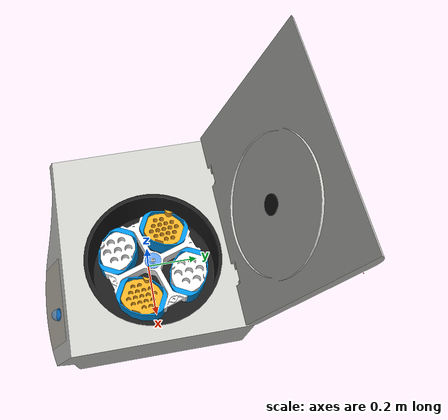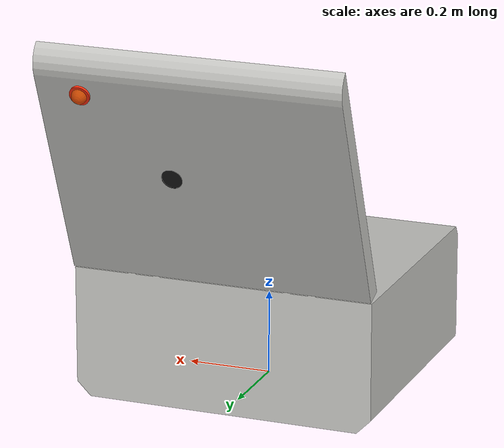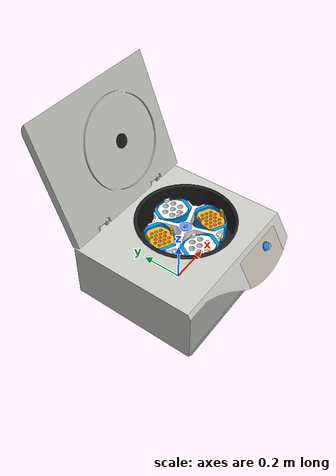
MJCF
<?xml version='1.0' encoding='utf-8'?>
<mujoco model="centrifuge_eppendorf_5910_ri">
  <compiler angle="radian" autolimits="true" assetdir="../../assets" />
  <default>
    <default class="visual">
      <geom type="mesh" contype="0" conaffinity="0" density="0" group="2" />
      <mesh inertia="shell" />
    </default>
    <default class="inertia">
      <geom type="mesh" contype="0" conaffinity="0" group="5" />
      <mesh inertia="exact" />
    </default>
    <default class="collision">
      <geom type="mesh" contype="0" conaffinity="1" density="0" group="3" />
    </default>
    <default class="button">
      <geom type="cylinder" size="0.01 0.005" rgba="0.2 0.7 0.2 1"
            contype="1" conaffinity="1" group="3" friction="1.0 0.005 0.0001" />
    </default>
  </default>
  <option gravity="0 0 0" />
  <asset>
    <mesh class="visual" name="body-visual-0" file="instrument/centrifuge_eppendorf_5910_ri/body-visual-0.obj" />
    <material name="body-0" rgba="0.78431373 0.78431373 0.76862745 1" metallic="0.0" roughness="1.0" />
    <mesh class="visual" name="body-visual-1" file="instrument/centrifuge_eppendorf_5910_ri/body-visual-1.obj" />
    <material name="body-1" rgba="0.101961 0.101961 0.101961 1" metallic="0.0" roughness="1.0" />
    <mesh class="visual" name="body-visual-2" file="instrument/centrifuge_eppendorf_5910_ri/body-visual-2.obj" />
    <texture name="body-0" type="2d" file="instrument/centrifuge_eppendorf_5910_ri/body-0.png" />
    <material name="body-2" rgba="1 1 1 1" metallic="0.0" roughness="1.0" texture="body-0" />
    <mesh class="inertia" name="body-inertia" file="instrument/centrifuge_eppendorf_5910_ri/body-inertia.obj" />
    <mesh class="collision" name="body-collision-0" file="instrument/centrifuge_eppendorf_5910_ri/body-collision-0.obj" />
    <mesh class="visual" name="lid-visual-0" file="instrument/centrifuge_eppendorf_5910_ri/lid-visual-0.obj" />
    <material name="lid-0" rgba="0.101961 0.101961 0.101961 1" metallic="0.0" roughness="1.0" />
    <mesh class="visual" name="lid-visual-1" file="instrument/centrifuge_eppendorf_5910_ri/lid-visual-1.obj" />
    <material name="lid-1" rgba="0.78431373 0.78431373 0.76862745 1" metallic="0.0" roughness="1.0" />
    <mesh class="inertia" name="lid-inertia" file="instrument/centrifuge_eppendorf_5910_ri/lid-inertia.obj" />
    <mesh class="visual" name="rotor-body-visual-0" file="instrument/centrifuge_eppendorf_5910_ri/rotor-body-visual-0.obj" />
    <material name="rotor-body-0" rgba="1 1 1 1" metallic="0.0" roughness="1.0" />
    <mesh class="visual" name="rotor-body-visual-1" file="instrument/centrifuge_eppendorf_5910_ri/rotor-body-visual-1.obj" />
    <material name="rotor-body-1" rgba="0.380392 0.615686 0.980392 1" metallic="0.0" roughness="1.0" />
    <mesh class="inertia" name="rotor-body-inertia" file="instrument/centrifuge_eppendorf_5910_ri/rotor-body-inertia.obj" />
    <mesh class="visual" name="rotor-bucket-visual-0" file="instrument/centrifuge_eppendorf_5910_ri/rotor-bucket-visual-0.obj" />
    <material name="rotor-bucket-0" rgba="0 0.568627 0.894118 1" metallic="0.0" roughness="1.0" />
    <mesh class="inertia" name="rotor-bucket-inertia" file="instrument/centrifuge_eppendorf_5910_ri/rotor-bucket-inertia.obj" />
    <mesh class="visual" name="adapter-7x50-visual-0" file="instrument/centrifuge_eppendorf_5910_ri/adapter-7x50-visual-0.obj" />
    <material name="adapter-7x50-0" rgba="1 1 1 1" metallic="0.0" roughness="1.0" />
    <mesh class="inertia" name="adapter-7x50-inertia" file="instrument/centrifuge_eppendorf_5910_ri/adapter-7x50-inertia.obj" />
    <mesh class="visual" name="adapter-17x15-visual-0" file="instrument/centrifuge_eppendorf_5910_ri/adapter-17x15-visual-0.obj" />
    <material name="adapter-17x15-0" rgba="1 0.670588 0.137255 1" metallic="0.0" roughness="1.0" />
    <mesh class="inertia" name="adapter-17x15-inertia" file="instrument/centrifuge_eppendorf_5910_ri/adapter-17x15-inertia.obj" />
  </asset>
  <extension />
  <worldbody>
    <body name="body" pos="0 0 0.05654646" quat="1 0 0 0">
      <geom class="visual" mesh="body-visual-0" material="body-0" />
      <geom class="visual" mesh="body-visual-1" material="body-1" />
      <geom class="visual" mesh="body-visual-2" material="body-2" />
      <geom class="inertia" mesh="body-inertia" density="1000" />
      <geom class="collision" name="body-inertia.002" mesh="body-collision-0" />
      <geom class="collision" type="box" size="0.36135778 0.29667471 0.07082613" pos="0 0 0.01546793" />
      <geom class="collision" type="box" size="0.36289674 0.03628967 0.08310333" pos="0 0.26516002 0.17030346" />
      <geom class="collision" type="box" size="0.30627608 0.03644686 0.08514473" pos="0.32315937 -0.00782504 0.16854638" quat="0.70756862 0.00117126 -0.00124823 -0.70664257" />
      <geom class="collision" type="box" size="0.30627608 0.1038276 0.08514473" pos="-0.25767905 -0.00782504 0.16854638" quat="0.70756862 0.00117126 -0.00124823 -0.70664257" />
      <geom class="collision" type="box" size="0.36289674 0.05262003 0.08310333" pos="0 -0.25960118 0.17030346" />
      <geom class="collision" type="box" size="0.0960729 0.0230575 0.08492844" pos="0.24200605 -0.16945544 0.16854638" quat="-0.3531246 -0.00095042 -0.00093073 0.93557535" />
      <geom class="collision" type="box" size="0.0960729 0.0230575 0.08492844" pos="-0.10209555 0.1908775 0.16854638" quat="-0.3531246 -0.00095042 -0.00093073 0.93557535" />
      <geom class="collision" type="box" size="0.09607289 0.0230575 0.08492844" pos="-0.10704812 -0.16564459 0.1692524" quat="0.91103685 0.0000146 0.00133017 -0.41232279" />
      <geom class="collision" type="box" size="0.09607289 0.0230575 0.08492844" pos="0.25120223 0.18449309 0.1692524" quat="0.91103685 0.0000146 0.00133017 -0.41232279" />

      <body name="lid" pos="-0 0.38006762 0.56668099" quat="-0.56526372 0.82491026 0 0">
        <site name="lid" pos="0.36919737 -0.20 0.02106472" quat="-1 1 1 -1" size="0.001" rgba="1 0 0 1"/>
        <joint name="lid" type="hinge" pos="-0.2266712 0.30333889 0.02083411" axis="1 -0 -0" range="0 1.94" stiffness="27.5" springref="0" damping="20"/>
        <geom class="visual" mesh="lid-visual-0" material="lid-0" />
        <geom class="visual" mesh="lid-visual-1" material="lid-1" />
        <geom class="inertia" mesh="lid-inertia" density="1000" />
        <geom class="collision" type="box" size="0.29593109 0.02106472 0.36919737" pos="0.00669231 0.01305942 0.02087301" quat="0.49807294 0.50168699 0.49849278 0.50173545" />
        <!-- Lid release button: attached to the moving lid, not the fixed base. -->
        <body name="lid_open_button" pos="0.25 -0.19166943 0.04951919">
          <joint name="lid_open_button_joint" type="slide" axis="0 0 1" range="-0.004 0" limited="true" damping="5" stiffness="1000" />
          <geom class="button" name="lid_open_button_geom" pos="0 0 0" size="0.018 0.004" rgba="1 0.18 0.05 1" />
          <geom name="lid_open_button_visual" type="cylinder" pos="0 0 0.005" size="0.024 0.003"
                rgba="1 0.18 0.05 1" contype="0" conaffinity="0" group="2" />
          <site name="lid_open_button" pos="0 0 0.008" size="0.018" type="sphere" rgba="1 0.55 0.05 0.45" />
        </body>
      </body>
      <!-- The screen is the inclined textured panel (normal 0 -0.868631 0.495459). -->
      <body name="screen_start_button" pos="0.2 -0.33897815 0.19316678" quat="0.86471358 0.50226530 0 0">
        <!-- Local +Z is the screen outward normal; pressing moves into the panel. -->
        <joint name="screen_start_button_joint" type="slide" axis="0 0 -1" range="0 0.005" damping="5" stiffness="1200" />
        <geom class="button" name="screen_start_button_geom" size="0.018 0.002" />
        <geom name="screen_start_button_visual" type="cylinder" pos="0 0 -0.003" size="0.022 0.001"
              rgba="0.12 0.55 0.95 1" contype="0" conaffinity="0" group="2" />
        <site name="screen_start_button_touch" pos="0 0 0.003" size="0.019" type="sphere" rgba="0.12 0.55 0.95 0.35" />
      </body>

      <body name="rotor-body" pos="0.07134309 0.0116669 0.20058534" quat="0.80993986 0 0 -0.58651293">
        <geom class="visual" mesh="rotor-body-visual-0" material="rotor-body-0" />
        <geom class="visual" mesh="rotor-body-visual-1" material="rotor-body-1" />
        <geom class="inertia" mesh="rotor-body-inertia" density="1000" />
        <geom class="collision" type="box" size="0.16315603 0.0081578 0.02871547" pos="0.00038151 0.00010916 -0.01821184" />
        <geom class="collision" type="box" size="0.16315606 0.0081578 0.02871547" pos="0.00038151 0.00010916 -0.01821184" quat="-0.70637015 0 0 0.70784265" />
        <geom class="collision" type="cylinder" size="0.0345578 0.03003073" pos="-0.0000825 -0.00021007 -0.01738334" />
        <body name="rotor-bucket-0" pos="-0.09273635 0.09278435 -0.07515634" quat="-0.38268179 -0.00111962 0.002703 0.92387558">
          <geom class="visual" mesh="rotor-bucket-visual-0" material="rotor-bucket-0" />
          <geom class="inertia" mesh="rotor-bucket-inertia" density="1000" />
          <body name="adapter-7x50-0" pos="0.00000012 0.00000003 -0.00166672" quat="0 0 -0 1">
            <geom class="visual" mesh="adapter-7x50-visual-0" material="adapter-7x50-0" />
            <geom class="inertia" mesh="adapter-7x50-inertia" density="1000" />
            <geom type="cylinder" size="0.014 0.015" pos="0 0 0.01"
              density="1000"  friction="3.0" solref="0.002 1" solimp="0.9 0.95 0.001"
              contype="1" conaffinity="1" group="3" rgba="0.8 0.8 0.8 0.5" />
          </body>
        </body>
        <body name="rotor-bucket-1" pos="-0.09278436 -0.09273635 -0.07515634" quat="0.92387558 0.002703 -0.00111962 -0.38268179">
          <geom class="visual" mesh="rotor-bucket-visual-0" material="rotor-bucket-0" />
          <geom class="inertia" mesh="rotor-bucket-inertia" density="1000" />
          <body name="adapter-17x15-1" pos="0.0000679 0.00000008 -0.01166692" quat="1 0 -0 0">
            <geom class="visual" mesh="adapter-17x15-visual-0" material="adapter-17x15-0" />
            <geom class="inertia" mesh="adapter-17x15-inertia" density="1000" />
          </body>
        </body>
        <body name="rotor-bucket-2" pos="0.09273635 -0.09278435 -0.07515634" quat="0.92387558 0.002703 0.00111962 0.38268179">
          <geom class="visual" mesh="rotor-bucket-visual-0" material="rotor-bucket-0" />
          <geom class="inertia" mesh="rotor-bucket-inertia" density="1000" />
          <body name="adapter-7x50-1" pos="0.00006777 0.00000002 -0.00166672" quat="1 0 -0 -0">
            <geom class="visual" mesh="adapter-7x50-visual-0" material="adapter-7x50-0" />
            <geom class="inertia" mesh="adapter-7x50-inertia" density="1000" />
            <geom type="cylinder" name="test_hole" size="0.014 0.015" pos="0 0 0.01"
              friction="3.0" solref="0.002 1" solimp="0.9 0.95 0.001"
              contype="1" conaffinity="1" group="3" rgba="0.8 0.8 0.8 0.5" />
          </body>
        </body>
        <body name="rotor-bucket-3" pos="0.09278436 0.09273635 -0.07515634" quat="0.38268179 0.00111962 0.002703 0.92387558">
          <geom class="visual" mesh="rotor-bucket-visual-0" material="rotor-bucket-0" />
          <geom class="inertia" mesh="rotor-bucket-inertia" density="1000" />
          <body name="adapter-17x15-0" pos="0 0.00000009 -0.01166692" quat="-0 0 -0 1">
            <geom class="visual" mesh="adapter-17x15-visual-0" material="adapter-17x15-0" />
            <geom class="inertia" mesh="adapter-17x15-inertia" density="1000" />
          </body>
        </body>
      </body>
    </body>
  </worldbody>
  <contact>
    <exclude body1="body" body2="lid_open_button" />
    <exclude body1="lid" body2="lid_open_button" />
    <exclude body1="body" body2="screen_start_button" />
  </contact>
  <!-- 传感器，检测按钮按压 -->
  <sensor>
    <touch name="lid_open_button" site="lid_open_button" />
    <touch name="screen_start_button_touch" site="screen_start_button_touch" />
  </sensor>
  <equality>
    <joint name="lid-lock" joint1="lid" polycoef="1.94" active="false" />
  </equality>
  <!-- 执行器，控制盖子打开 -->
  <actuator>
    <position name="lid_opener" joint="lid" kp="45" ctrlrange="0 1.94" forcerange="-80 80" />
  </actuator>

</mujoco>
